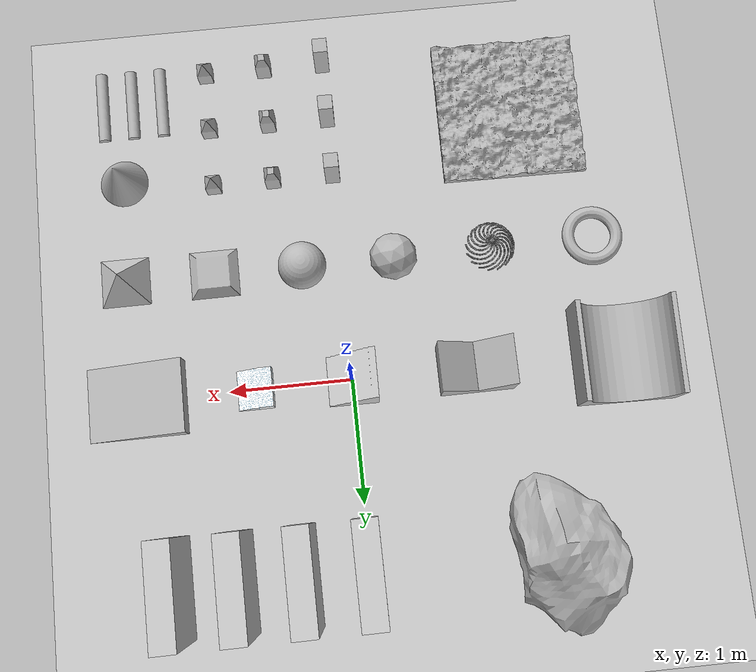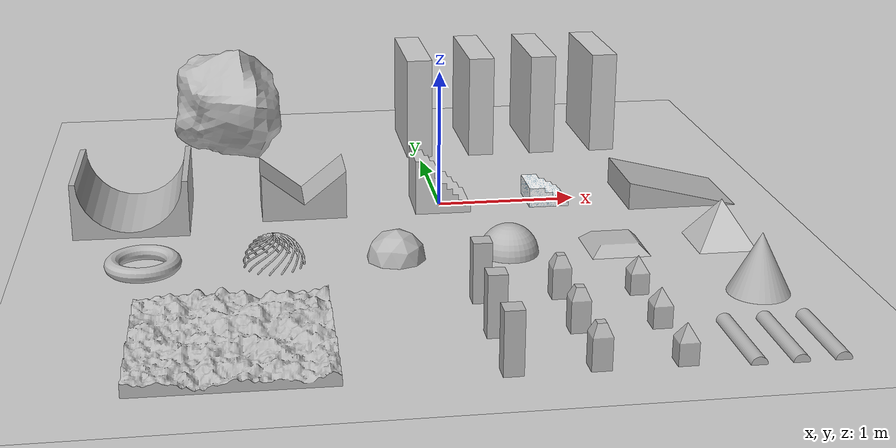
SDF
<sdf version="1.7">
 <world name="default">
  <light name="sun" type="directional">
   <pose>0 0 10 0 -0 0</pose>
   <diffuse>0.8 0.8 0.8 1</diffuse>
   <specular>0.2 0.2 0.2 1</specular>
   <attenuation>
    <range>1000</range>
    <constant>0.9</constant>
    <linear>0.01</linear>
    <quadratic>0.001</quadratic>
   </attenuation>
   <direction>-0.5 0.1 -0.9</direction>
   <spot><inner_angle>0</inner_angle><outer_angle>0</outer_angle><falloff>0</falloff></spot>
  </light>
  <model name="ground_plane">
   <static>1</static>
   <link name="link">
    <collision name="collision">
     <geometry><plane><normal>0 0 1</normal><size>0.16 0.16</size></plane></geometry>
     <surface>
      <contact><collide_bitmask>65535</collide_bitmask></contact>
      <friction><ode><mu>100</mu><mu2>50</mu2></ode></friction>
     </surface>
    </collision>
    <visual name="visual">
     <cast_shadows>0</cast_shadows>
     <geometry><plane><normal>0 0 1</normal><size>100 100</size></plane></geometry>
     <material>
      <script><uri>file://media/materials/scripts/gazebo.material</uri><name>Gazebo/Grey</name></script>
     </material>
    </visual>
   </link>
  </model>
  <gravity>0 0 -9.8</gravity>
  <magnetic_field>6e-06 2.3e-05 -4.2e-05</magnetic_field>
  <atmosphere type="adiabatic"/>
  <physics type="ode">
   <max_step_size>0.001</max_step_size>
   <real_time_factor>1</real_time_factor>
   <real_time_update_rate>1000</real_time_update_rate>
  </physics>
  <scene><ambient>0.4 0.4 0.4 1</ambient><background>0.7 0.7 0.7 1</background><shadows>1</shadows></scene>
  <spherical_coordinates>
   <surface_model>EARTH_WGS84</surface_model>
   <latitude_deg>0</latitude_deg>
   <longitude_deg>0</longitude_deg>
   <elevation>0</elevation>
   <heading_deg>0</heading_deg>
  </spherical_coordinates>
  <model name="parede">
   <link name="link">
    <collision name="collision">
     <geometry><mesh><scale>0.2 0.2 0.2</scale><uri>model://parede/meshes/parede.stl</uri></mesh></geometry>
    </collision>
    <visual name="visual">
     <geometry><mesh><scale>0.2 0.2 0.2</scale><uri>model://parede/meshes/parede.dae</uri></mesh></geometry>
    </visual>
    <inertial>
     <inertia><ixx>1</ixx><ixy>0</ixy><ixz>0</ixz><iyy>1</iyy><iyz>0</iyz><izz>1</izz></inertia>
     <mass>1</mass>
    </inertial>
   </link>
   <pose>1.0002 1.49985 0.399995 0 -0 1.57713</pose>
  </model>
  <model name="parede_clone">
   <link name="link">
    <collision name="collision">
     <geometry><mesh><scale>0.2 0.2 0.2</scale><uri>model://parede/meshes/parede.stl</uri></mesh></geometry>
    </collision>
    <visual name="visual">
     <geometry><mesh><scale>0.2 0.2 0.2</scale><uri>model://parede/meshes/parede.dae</uri></mesh></geometry>
    </visual>
    <inertial>
     <inertia><ixx>1</ixx><ixy>0</ixy><ixz>0</ixz><iyy>1</iyy><iyz>0</iyz><izz>1</izz></inertia>
     <mass>1</mass>
    </inertial>
   </link>
   <pose>1.50019 1.49985 0.399995 0 -0 1.57711</pose>
  </model>
  <model name="parede_clone_0">
   <link name="link">
    <collision name="collision">
     <geometry><mesh><scale>0.2 0.2 0.2</scale><uri>model://parede/meshes/parede.stl</uri></mesh></geometry>
    </collision>
    <visual name="visual">
     <geometry><mesh><scale>0.2 0.2 0.2</scale><uri>model://parede/meshes/parede.dae</uri></mesh></geometry>
    </visual>
    <inertial>
     <inertia><ixx>1</ixx><ixy>0</ixy><ixz>0</ixz><iyy>1</iyy><iyz>0</iyz><izz>1</izz></inertia>
     <mass>1</mass>
    </inertial>
   </link>
   <pose>0.500203 1.49985 0.399995 0 -0 1.57722</pose>
  </model>
  <model name="parede_clone_0_clone">
   <link name="link">
    <collision name="collision">
     <geometry><mesh><scale>0.2 0.2 0.2</scale><uri>model://parede/meshes/parede.stl</uri></mesh></geometry>
    </collision>
    <visual name="visual">
     <geometry><mesh><scale>0.2 0.2 0.2</scale><uri>model://parede/meshes/parede.dae</uri></mesh></geometry>
    </visual>
    <inertial>
     <inertia><ixx>1</ixx><ixy>0</ixy><ixz>0</ixz><iyy>1</iyy><iyz>0</iyz><izz>1</izz></inertia>
     <mass>1</mass>
    </inertial>
   </link>
   <pose>0.000197 1.49985 0.399995 0 -0 1.57716</pose>
  </model>
  <model name="chao_aspero">
   <link name="link">
    <collision name="collision">
     <geometry>
      <mesh><scale>0.6 0.6 0.6</scale><uri>model://chao_aspero/meshes/chao_aspero.stl</uri></mesh>
     </geometry>
    </collision>
    <visual name="visual">
     <geometry>
      <mesh><scale>0.6 0.6 0.6</scale><uri>model://chao_aspero/meshes/chao_aspero.dae</uri></mesh>
     </geometry>
    </visual>
    <inertial>
     <inertia><ixx>1</ixx><ixy>0</ixy><ixz>0</ixz><iyy>1</iyy><iyz>0</iyz><izz>1</izz></inertia>
     <mass>1</mass>
    </inertial>
   </link>
   <pose>-1.54118 -2.18697 0.06 1e-06 -2e-06 -0.010686</pose>
  </model>
  <model name="pilar">
   <link name="link">
    <collision name="collision">
     <geometry><mesh><scale>0.2 0.2 0.2</scale><uri>model://pilar/meshes/pilar.stl</uri></mesh></geometry>
    </collision>
    <visual name="visual">
     <geometry><mesh><scale>0.2 0.2 0.2</scale><uri>model://pilar/meshes/pilar.dae</uri></mesh></geometry>
    </visual>
    <inertial>
     <inertia><ixx>1</ixx><ixy>0</ixy><ixz>0</ixz><iyy>1</iyy><iyz>0</iyz><izz>1</izz></inertia>
     <mass>1</mass>
    </inertial>
   </link>
   <pose>4e-06 -2.75 0.2 -0 1e-06 0.003482</pose>
  </model>
  <model name="pilar_clone">
   <link name="link">
    <collision name="collision">
     <geometry><mesh><scale>0.2 0.2 0.2</scale><uri>model://pilar/meshes/pilar.stl</uri></mesh></geometry>
    </collision>
    <visual name="visual">
     <geometry><mesh><scale>0.2 0.2 0.2</scale><uri>model://pilar/meshes/pilar.dae</uri></mesh></geometry>
    </visual>
    <inertial>
     <inertia><ixx>1</ixx><ixy>0</ixy><ixz>0</ixz><iyy>1</iyy><iyz>0</iyz><izz>1</izz></inertia>
     <mass>1</mass>
    </inertial>
   </link>
   <pose>3e-06 -2.25 0.2 0 1e-06 -0.006098</pose>
  </model>
  <model name="pilar_2">
   <link name="link">
    <collision name="collision">
     <geometry><mesh><scale>0.2 0.2 0.2</scale><uri>model://pilar_2/meshes/pilar_2.stl</uri></mesh></geometry>
    </collision>
    <visual name="visual">
     <geometry><mesh><scale>0.2 0.2 0.2</scale><uri>model://pilar_2/meshes/pilar_2.dae</uri></mesh></geometry>
    </visual>
    <inertial>
     <inertia><ixx>1</ixx><ixy>0</ixy><ixz>0</ixz><iyy>1</iyy><iyz>0</iyz><izz>1</izz></inertia>
     <mass>1</mass>
    </inertial>
   </link>
   <pose>0.499997 -2.75 0.14 0 -1e-06 0.004948</pose>
  </model>
  <model name="pilar_2_clone">
   <link name="link">
    <collision name="collision">
     <geometry><mesh><scale>0.2 0.2 0.2</scale><uri>model://pilar_2/meshes/pilar_2.stl</uri></mesh></geometry>
    </collision>
    <visual name="visual">
     <geometry><mesh><scale>0.2 0.2 0.2</scale><uri>model://pilar_2/meshes/pilar_2.dae</uri></mesh></geometry>
    </visual>
    <inertial>
     <inertia><ixx>1</ixx><ixy>0</ixy><ixz>0</ixz><iyy>1</iyy><iyz>0</iyz><izz>1</izz></inertia>
     <mass>1</mass>
    </inertial>
   </link>
   <pose>0.499997 -1.75 0.139991 -3e-06 -2e-06 0.002446</pose>
  </model>
  <model name="pilar_3">
   <link name="link">
    <collision name="collision">
     <geometry><mesh><scale>0.2 0.2 0.2</scale><uri>model://pilar_3/meshes/pilar_3.stl</uri></mesh></geometry>
    </collision>
    <visual name="visual">
     <geometry><mesh><scale>0.2 0.2 0.2</scale><uri>model://pilar_3/meshes/pilar_3.dae</uri></mesh></geometry>
    </visual>
    <inertial>
     <inertia><ixx>1</ixx><ixy>0</ixy><ixz>0</ixz><iyy>1</iyy><iyz>0</iyz><izz>1</izz></inertia>
     <mass>1</mass>
    </inertial>
   </link>
   <pose>0.999992 -2.75 0.139995 1e-06 -1e-06 0.005427</pose>
  </model>
  <model name="pilar_3_clone">
   <link name="link">
    <collision name="collision">
     <geometry><mesh><scale>0.2 0.2 0.2</scale><uri>model://pilar_3/meshes/pilar_3.stl</uri></mesh></geometry>
    </collision>
    <visual name="visual">
     <geometry><mesh><scale>0.2 0.2 0.2</scale><uri>model://pilar_3/meshes/pilar_3.dae</uri></mesh></geometry>
    </visual>
    <inertial>
     <inertia><ixx>1</ixx><ixy>0</ixy><ixz>0</ixz><iyy>1</iyy><iyz>0</iyz><izz>1</izz></inertia>
     <mass>1</mass>
    </inertial>
   </link>
   <pose>0.999991 -2.25 0.139995 0 -1e-06 0.003959</pose>
  </model>
  <model name="lombada">
   <link name="link">
    <collision name="collision">
     <geometry><mesh><scale>0.2 0.2 0.2</scale><uri>model://lombada/meshes/lombada.stl</uri></mesh></geometry>
    </collision>
    <visual name="visual">
     <geometry><mesh><scale>0.2 0.2 0.2</scale><uri>model://lombada/meshes/lombada.dae</uri></mesh></geometry>
    </visual>
    <inertial>
     <inertia><ixx>1</ixx><ixy>0</ixy><ixz>0</ixz><iyy>1</iyy><iyz>0</iyz><izz>1</izz></inertia>
     <mass>1</mass>
    </inertial>
   </link>
   <pose>1.4 -2.54756 -6e-06 -1e-06 -2e-06 0.00715</pose>
  </model>
  <model name="rampa_dupla">
   <link name="link">
    <collision name="collision">
     <geometry>
      <mesh><scale>0.2 0.2 0.2</scale><uri>model://rampa_dupla/meshes/rampa_dupla.stl</uri></mesh>
     </geometry>
    </collision>
    <visual name="visual">
     <geometry>
      <mesh><scale>0.2 0.2 0.2</scale><uri>model://rampa_dupla/meshes/rampa_dupla.dae</uri></mesh>
     </geometry>
    </visual>
    <inertial>
     <inertia><ixx>1</ixx><ixy>0</ixy><ixz>0</ixz><iyy>1</iyy><iyz>0</iyz><izz>1</izz></inertia>
     <mass>1</mass>
    </inertial>
   </link>
   <pose>-1 7e-06 -0.09 0 -0 -1.56675</pose>
  </model>
  <model name="rampa_dupla_2">
   <link name="link">
    <collision name="collision">
     <geometry>
      <mesh><scale>0.2 0.2 0.2</scale><uri>model://rampa_dupla_2/meshes/rampa_dupla_2.stl</uri></mesh>
     </geometry>
    </collision>
    <visual name="visual">
     <geometry>
      <mesh><scale>0.2 0.2 0.2</scale><uri>model://rampa_dupla_2/meshes/rampa_dupla_2.dae</uri></mesh>
     </geometry>
    </visual>
    <inertial>
     <inertia><ixx>1</ixx><ixy>0</ixy><ixz>0</ixz><iyy>1</iyy><iyz>0</iyz><izz>1</izz></inertia>
     <mass>1</mass>
    </inertial>
   </link>
   <pose>-2.2 7e-06 -7e-06 -2e-06 -2e-06 -0.016276</pose>
  </model>
  <model name="escada">
   <link name="link">
    <collision name="collision">
     <geometry><mesh><scale>0.2 0.2 0.2</scale><uri>model://escada/meshes/escada.stl</uri></mesh></geometry>
    </collision>
    <visual name="visual">
     <geometry><mesh><scale>0.2 0.2 0.2</scale><uri>model://escada/meshes/escada.dae</uri></mesh></geometry>
    </visual>
    <inertial>
     <inertia><ixx>1</ixx><ixy>0</ixy><ixz>0</ixz><iyy>1</iyy><iyz>0</iyz><izz>1</izz></inertia>
     <mass>1</mass>
    </inertial>
   </link>
   <pose>0.8 0.010047 -3e-06 0 -0 1.57075</pose>
  </model>
  <model name="escada_2">
   <link name="link">
    <collision name="collision">
     <geometry><mesh><scale>0.2 0.2 0.2</scale><uri>model://escada_2/meshes/escada_2.stl</uri></mesh></geometry>
    </collision>
    <visual name="visual">
     <geometry><mesh><scale>0.2 0.2 0.2</scale><uri>model://escada_2/meshes/escada_2.dae</uri></mesh></geometry>
    </visual>
    <inertial>
     <inertia><ixx>1</ixx><ixy>0</ixy><ixz>0</ixz><iyy>1</iyy><iyz>0</iyz><izz>1</izz></inertia>
     <mass>1</mass>
    </inertial>
   </link>
   <pose>-9e-06 -1.6e-05 0.199995 -1.1e-05 -4e-06 3.13255</pose>
  </model>
  <model name="lombada_clone">
   <link name="link">
    <collision name="collision">
     <geometry><mesh><scale>0.2 0.2 0.2</scale><uri>model://lombada/meshes/lombada.stl</uri></mesh></geometry>
    </collision>
    <visual name="visual">
     <geometry><mesh><scale>0.2 0.2 0.2</scale><uri>model://lombada/meshes/lombada.dae</uri></mesh></geometry>
    </visual>
    <inertial>
     <inertia><ixx>1</ixx><ixy>0</ixy><ixz>0</ixz><iyy>1</iyy><iyz>0</iyz><izz>1</izz></inertia>
     <mass>1</mass>
    </inertial>
   </link>
   <pose>1.65 -2.547 -4e-06 -0 -2e-06 0.00584</pose>
  </model>
  <model name="prisma_trapezoidal">
   <link name="link">
    <collision name="collision">
     <geometry>
      <mesh><scale>0.2 0.2 0.2</scale><uri>model://prisma_trapezoidal/meshes/prisma_trapezoidal.stl</uri></mesh>
     </geometry>
    </collision>
    <visual name="visual">
     <geometry>
      <mesh><scale>0.2 0.2 0.2</scale><uri>model://prisma_trapezoidal/meshes/prisma_trapezoidal.dae</uri></mesh>
     </geometry>
    </visual>
    <inertial>
     <inertia><ixx>1</ixx><ixy>0</ixy><ixz>0</ixz><iyy>1</iyy><iyz>0</iyz><izz>1</izz></inertia>
     <mass>1</mass>
    </inertial>
   </link>
   <pose>1.0543 -0.998768 0.000205 1e-06 -0 0.003474</pose>
  </model>
  <model name="meia_esfera">
   <link name="link">
    <collision name="collision">
     <geometry>
      <mesh><scale>0.2 0.2 0.2</scale><uri>model://meia_esfera/meshes/meia_esfera.stl</uri></mesh>
     </geometry>
    </collision>
    <visual name="visual">
     <geometry>
      <mesh><scale>0.2 0.2 0.2</scale><uri>model://meia_esfera/meshes/meia_esfera.dae</uri></mesh>
     </geometry>
    </visual>
    <inertial>
     <inertia><ixx>1</ixx><ixy>0</ixy><ixz>0</ixz><iyy>1</iyy><iyz>0</iyz><izz>1</izz></inertia>
     <mass>1</mass>
    </inertial>
   </link>
   <pose>0.32596 -1.00018 -0 2e-06 0 -0.000544</pose>
  </model>
  <model name="ico_esfera">
   <link name="link">
    <collision name="collision">
     <geometry>
      <mesh><scale>0.2 0.2 0.2</scale><uri>model://ico_esfera/meshes/ico_esfera.stl</uri></mesh>
     </geometry>
    </collision>
    <visual name="visual">
     <geometry>
      <mesh><scale>0.2 0.2 0.2</scale><uri>model://ico_esfera/meshes/ico_esfera.dae</uri></mesh>
     </geometry>
    </visual>
    <inertial>
     <inertia><ixx>1</ixx><ixy>0</ixy><ixz>0</ixz><iyy>1</iyy><iyz>0</iyz><izz>1</izz></inertia>
     <mass>1</mass>
    </inertial>
   </link>
   <pose>-0.438321 -1.00196 1e-06 1e-06 -3e-06 0.008542</pose>
  </model>
  <model name="esfera_personalizada_2">
   <link name="link">
    <collision name="collision">
     <geometry>
      <mesh>
       <scale>0.2 0.2 0.2</scale>
       <uri>model://esfera_personalizada_2/meshes/esfera_personalizada_2.stl</uri>
      </mesh>
     </geometry>
    </collision>
    <visual name="visual">
     <geometry>
      <mesh>
       <scale>0.2 0.2 0.2</scale>
       <uri>model://esfera_personalizada_2/meshes/esfera_personalizada_2.dae</uri>
      </mesh>
     </geometry>
    </visual>
    <inertial>
     <inertia><ixx>1</ixx><ixy>0</ixy><ixz>0</ixz><iyy>1</iyy><iyz>0</iyz><izz>1</izz></inertia>
     <mass>1</mass>
    </inertial>
   </link>
   <pose>-1.249 -1.00007 0.003901 6e-06 -4e-06 -0.000451</pose>
  </model>
  <model name="piramide">
   <link name="link">
    <collision name="collision">
     <geometry><mesh><scale>0.2 0.2 0.2</scale><uri>model://piramide/meshes/piramide.stl</uri></mesh></geometry>
    </collision>
    <visual name="visual">
     <geometry><mesh><scale>0.2 0.2 0.2</scale><uri>model://piramide/meshes/piramide.dae</uri></mesh></geometry>
    </visual>
    <inertial>
     <inertia><ixx>1</ixx><ixy>0</ixy><ixz>0</ixz><iyy>1</iyy><iyz>0</iyz><izz>1</izz></inertia>
     <mass>1</mass>
    </inertial>
   </link>
   <pose>1.79089 -1.00001 0.199991 0 0 -1.4e-05</pose>
  </model>
  <model name="anel">
   <link name="link">
    <collision name="collision">
     <geometry><mesh><scale>0.2 0.2 0.2</scale><uri>model://anel/meshes/anel.stl</uri></mesh></geometry>
    </collision>
    <visual name="visual">
     <geometry><mesh><scale>0.2 0.2 0.2</scale><uri>model://anel/meshes/anel.dae</uri></mesh></geometry>
    </visual>
    <inertial>
     <inertia><ixx>1</ixx><ixy>0</ixy><ixz>0</ixz><iyy>1</iyy><iyz>0</iyz><izz>1</izz></inertia>
     <mass>1</mass>
    </inertial>
   </link>
   <pose>-2.1 -1 0.050003 5e-06 1.5e-05 0.386587</pose>
  </model>
  <model name="pilar_clone_clone">
   <link name="link">
    <collision name="collision">
     <geometry><mesh><scale>0.2 0.2 0.2</scale><uri>model://pilar/meshes/pilar.stl</uri></mesh></geometry>
    </collision>
    <visual name="visual">
     <geometry><mesh><scale>0.2 0.2 0.2</scale><uri>model://pilar/meshes/pilar.dae</uri></mesh></geometry>
    </visual>
    <inertial>
     <inertia><ixx>1</ixx><ixy>0</ixy><ixz>0</ixz><iyy>1</iyy><iyz>0</iyz><izz>1</izz></inertia>
     <mass>1</mass>
    </inertial>
   </link>
   <pose>3e-06 -1.75 0.199991 -5e-06 3e-06 -0.00627</pose>
  </model>
  <model name="pilar_2_clone_clone">
   <link name="link">
    <collision name="collision">
     <geometry><mesh><scale>0.2 0.2 0.2</scale><uri>model://pilar_2/meshes/pilar_2.stl</uri></mesh></geometry>
    </collision>
    <visual name="visual">
     <geometry><mesh><scale>0.2 0.2 0.2</scale><uri>model://pilar_2/meshes/pilar_2.dae</uri></mesh></geometry>
    </visual>
    <inertial>
     <inertia><ixx>1</ixx><ixy>0</ixy><ixz>0</ixz><iyy>1</iyy><iyz>0</iyz><izz>1</izz></inertia>
     <mass>1</mass>
    </inertial>
   </link>
   <pose>0.499997 -2.25 0.14 -5e-06 -1e-06 0.002485</pose>
  </model>
  <model name="pilar_3_clone_clone">
   <link name="link">
    <collision name="collision">
     <geometry><mesh><scale>0.2 0.2 0.2</scale><uri>model://pilar_3/meshes/pilar_3.stl</uri></mesh></geometry>
    </collision>
    <visual name="visual">
     <geometry><mesh><scale>0.2 0.2 0.2</scale><uri>model://pilar_3/meshes/pilar_3.dae</uri></mesh></geometry>
    </visual>
    <inertial>
     <inertia><ixx>1</ixx><ixy>0</ixy><ixz>0</ixz><iyy>1</iyy><iyz>0</iyz><izz>1</izz></inertia>
     <mass>1</mass>
    </inertial>
   </link>
   <pose>0.999992 -1.75 0.139996 1e-06 -1e-06 0.004068</pose>
  </model>
  <model name="lombada_clone_clone">
   <link name="link">
    <collision name="collision">
     <geometry><mesh><scale>0.2 0.2 0.2</scale><uri>model://lombada/meshes/lombada.stl</uri></mesh></geometry>
    </collision>
    <visual name="visual">
     <geometry><mesh><scale>0.2 0.2 0.2</scale><uri>model://lombada/meshes/lombada.dae</uri></mesh></geometry>
    </visual>
    <inertial>
     <inertia><ixx>1</ixx><ixy>0</ixy><ixz>0</ixz><iyy>1</iyy><iyz>0</iyz><izz>1</izz></inertia>
     <mass>1</mass>
    </inertial>
   </link>
   <pose>1.9 -2.547 -6e-06 -0 -1e-06 0.00584</pose>
  </model>
  <model name="cone">
   <link name="link">
    <collision name="collision">
     <geometry><mesh><scale>0.2 0.2 0.2</scale><uri>model://cone/meshes/cone.stl</uri></mesh></geometry>
    </collision>
    <visual name="visual">
     <geometry><mesh><scale>0.2 0.2 0.2</scale><uri>model://cone/meshes/cone.dae</uri></mesh></geometry>
    </visual>
    <inertial>
     <inertia><ixx>1</ixx><ixy>0</ixy><ixz>0</ixz><iyy>1</iyy><iyz>0</iyz><izz>1</izz></inertia>
     <mass>1</mass>
    </inertial>
   </link>
   <pose>1.75618 -1.8584 0.2 1e-06 -0 0.062464</pose>
  </model>
  <model name="rampa">
   <link name="link">
    <collision name="collision">
     <geometry><mesh><scale>0.2 0.2 0.2</scale><uri>model://rampa/meshes/rampa.stl</uri></mesh></geometry>
    </collision>
    <visual name="visual">
     <geometry><mesh><scale>0.2 0.2 0.2</scale><uri>model://rampa/meshes/rampa.dae</uri></mesh></geometry>
    </visual>
    <inertial>
     <inertia><ixx>1</ixx><ixy>0</ixy><ixz>0</ixz><iyy>1</iyy><iyz>0</iyz><izz>1</izz></inertia>
     <mass>1</mass>
    </inertial>
   </link>
   <pose>1.75 8e-06 -0.100005 -2e-06 1e-06 -3.1415</pose>
  </model>
  <model name="rocha">
   <link name="link">
    <collision name="collision">
     <geometry><mesh><scale>0.7 0.7 0.7</scale><uri>model://rocha/meshes/rocha.stl</uri></mesh></geometry>
    </collision>
    <visual name="visual">
     <geometry><mesh><scale>0.7 0.7 0.7</scale><uri>model://rocha/meshes/rocha.dae</uri></mesh></geometry>
    </visual>
    <inertial>
     <inertia><ixx>1</ixx><ixy>0</ixy><ixz>0</ixz><iyy>1</iyy><iyz>0</iyz><izz>1</izz></inertia>
     <mass>1</mass>
    </inertial>
   </link>
   <pose>-1.5 1.50001 0.375443 0.447375 0.222371 0.168202</pose>
  </model>
 </world>
</sdf>
